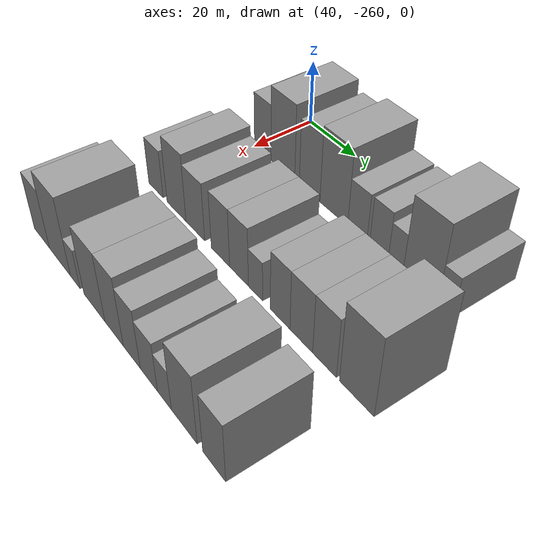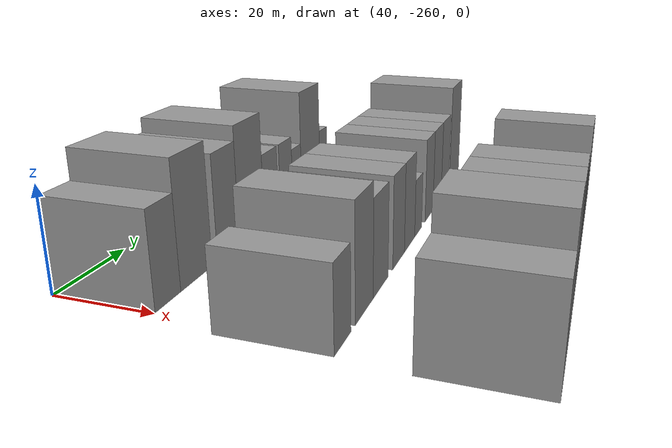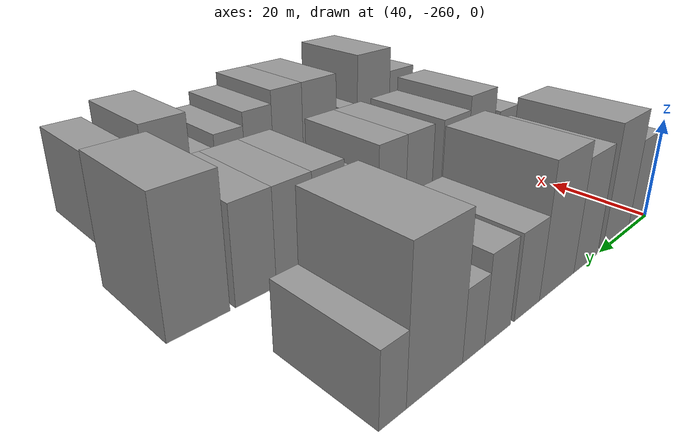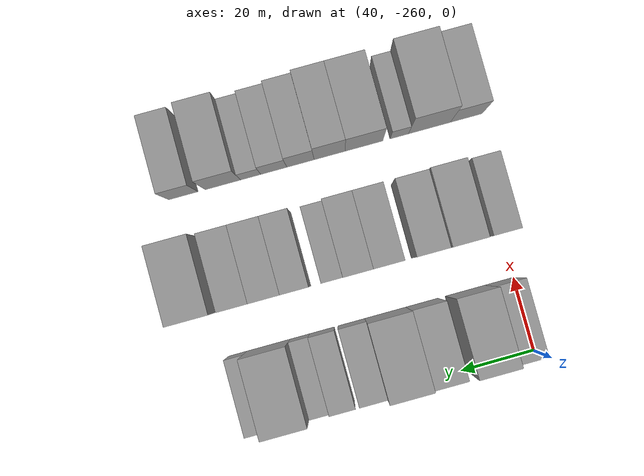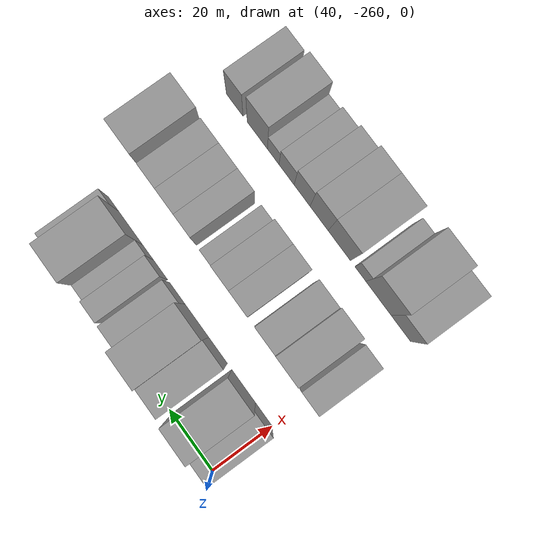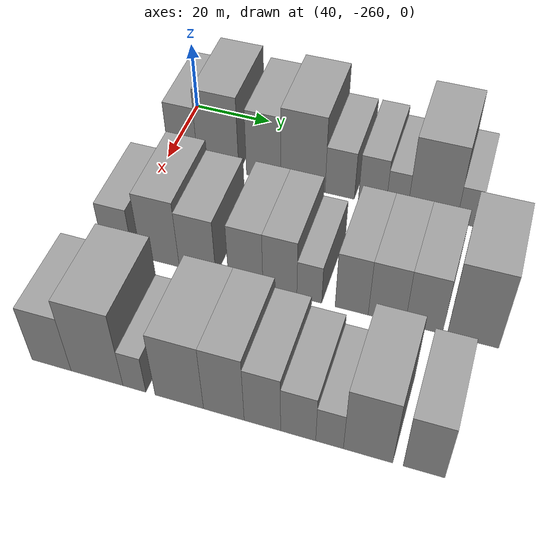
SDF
<sdf version="1.6">
 <world name="default">
  <model name="building_10">
   <static>1</static>
   <pose>50.0000 -255.9643 0 0.000000 0.000000 0.000000</pose>
   <link name="link">
    <pose>0 0 9.00 0 0 0</pose>
    <collision name="collision"><geometry><box><size>20.0000 7.7656 18.0000</size></box></geometry></collision>
    <visual name="visual">
     <cast_shadows>0</cast_shadows>
     <geometry><box><size>20.0000 7.7656 18.0000</size></box></geometry>
     <material>
      <script>
       <uri>model://grey_wall/materials/scripts</uri>
       <uri>model://grey_wall/materials/textures</uri>
       <name>vrc/grey_wall</name>
      </script>
     </material>
    </visual>
   </link>
  </model>
  <model name="building_11">
   <static>1</static>
   <pose>50.0000 -246.6785 0 0.000000 0.000000 0.000000</pose>
   <link name="link">
    <pose>0 0 12.00 0 0 0</pose>
    <collision name="collision"><geometry><box><size>20.0000 10.8059 24.0000</size></box></geometry></collision>
    <visual name="visual">
     <cast_shadows>0</cast_shadows>
     <geometry><box><size>20.0000 10.8059 24.0000</size></box></geometry>
     <material>
      <script>
       <uri>model://grey_wall/materials/scripts</uri>
       <uri>model://grey_wall/materials/textures</uri>
       <name>vrc/grey_wall</name>
      </script>
     </material>
    </visual>
   </link>
  </model>
  <model name="building_12">
   <static>1</static>
   <pose>50.0000 -234.8860 0 0.000000 0.000000 0.000000</pose>
   <link name="link">
    <pose>0 0 10.50 0 0 0</pose>
    <collision name="collision"><geometry><box><size>20.0000 8.7792 21.0000</size></box></geometry></collision>
    <visual name="visual">
     <cast_shadows>0</cast_shadows>
     <geometry><box><size>20.0000 8.7792 21.0000</size></box></geometry>
     <material>
      <script>
       <uri>model://grey_wall/materials/scripts</uri>
       <uri>model://grey_wall/materials/textures</uri>
       <name>vrc/grey_wall</name>
      </script>
     </material>
    </visual>
   </link>
  </model>
  <model name="building_13">
   <static>1</static>
   <pose>50.0000 -224.8944 0 0.000000 0.000000 0.000000</pose>
   <link name="link">
    <pose>0 0 12.00 0 0 0</pose>
    <collision name="collision"><geometry><box><size>20.0000 11.2038 24.0000</size></box></geometry></collision>
    <visual name="visual">
     <cast_shadows>0</cast_shadows>
     <geometry><box><size>20.0000 11.2038 24.0000</size></box></geometry>
     <material>
      <script>
       <uri>model://grey_wall/materials/scripts</uri>
       <uri>model://grey_wall/materials/textures</uri>
       <name>vrc/grey_wall</name>
      </script>
     </material>
    </visual>
   </link>
  </model>
  <model name="building_14">
   <static>1</static>
   <pose>50.0000 -215.6477 0 0.000000 0.000000 0.000000</pose>
   <link name="link">
    <pose>0 0 7.50 0 0 0</pose>
    <collision name="collision"><geometry><box><size>20.0000 7.2896 15.0000</size></box></geometry></collision>
    <visual name="visual">
     <cast_shadows>0</cast_shadows>
     <geometry><box><size>20.0000 7.2896 15.0000</size></box></geometry>
     <material>
      <script>
       <uri>model://grey_wall/materials/scripts</uri>
       <uri>model://grey_wall/materials/textures</uri>
       <name>vrc/grey_wall</name>
      </script>
     </material>
    </visual>
   </link>
  </model>
  <model name="building_15">
   <static>1</static>
   <pose>50.0000 -207.6275 0 0.000000 0.000000 0.000000</pose>
   <link name="link">
    <pose>0 0 7.50 0 0 0</pose>
    <collision name="collision"><geometry><box><size>20.0000 6.7509 15.0000</size></box></geometry></collision>
    <visual name="visual">
     <cast_shadows>0</cast_shadows>
     <geometry><box><size>20.0000 6.7509 15.0000</size></box></geometry>
     <material>
      <script>
       <uri>model://grey_wall/materials/scripts</uri>
       <uri>model://grey_wall/materials/textures</uri>
       <name>vrc/grey_wall</name>
      </script>
     </material>
    </visual>
   </link>
  </model>
  <model name="building_16">
   <static>1</static>
   <pose>50.0000 -201.6469 0 0.000000 0.000000 0.000000</pose>
   <link name="link">
    <pose>0 0 6.00 0 0 0</pose>
    <collision name="collision"><geometry><box><size>20.0000 5.2103 12.0000</size></box></geometry></collision>
    <visual name="visual">
     <cast_shadows>0</cast_shadows>
     <geometry><box><size>20.0000 5.2103 12.0000</size></box></geometry>
     <material>
      <script>
       <uri>model://grey_wall/materials/scripts</uri>
       <uri>model://grey_wall/materials/textures</uri>
       <name>vrc/grey_wall</name>
      </script>
     </material>
    </visual>
   </link>
  </model>
  <model name="building_17">
   <static>1</static>
   <pose>50.0000 -193.1836 0 0.000000 0.000000 0.000000</pose>
   <link name="link">
    <pose>0 0 12.00 0 0 0</pose>
    <collision name="collision"><geometry><box><size>20.0000 11.7162 24.0000</size></box></geometry></collision>
    <visual name="visual">
     <cast_shadows>0</cast_shadows>
     <geometry><box><size>20.0000 11.7162 24.0000</size></box></geometry>
     <material>
      <script>
       <uri>model://grey_wall/materials/scripts</uri>
       <uri>model://grey_wall/materials/textures</uri>
       <name>vrc/grey_wall</name>
      </script>
     </material>
    </visual>
   </link>
  </model>
  <model name="building_18">
   <static>1</static>
   <pose>50.0000 -184.8197 0 0.000000 0.000000 0.000000</pose>
   <link name="link">
    <pose>0 0 6.00 0 0 0</pose>
    <collision name="collision"><geometry><box><size>20.0000 5.0117 12.0000</size></box></geometry></collision>
    <visual name="visual">
     <cast_shadows>0</cast_shadows>
     <geometry><box><size>20.0000 5.0117 12.0000</size></box></geometry>
     <material>
      <script>
       <uri>model://grey_wall/materials/scripts</uri>
       <uri>model://grey_wall/materials/textures</uri>
       <name>vrc/grey_wall</name>
      </script>
     </material>
    </visual>
   </link>
  </model>
  <model name="building_88">
   <static>1</static>
   <pose>82.0000 -259.1674 0 0.000000 0.000000 0.000000</pose>
   <link name="link">
    <pose>0 0 7.50 0 0 0</pose>
    <collision name="collision"><geometry><box><size>20.0000 7.4036 15.0000</size></box></geometry></collision>
    <visual name="visual">
     <cast_shadows>0</cast_shadows>
     <geometry><box><size>20.0000 7.4036 15.0000</size></box></geometry>
     <material>
      <script>
       <uri>model://grey_wall/materials/scripts</uri>
       <uri>model://grey_wall/materials/textures</uri>
       <name>vrc/grey_wall</name>
      </script>
     </material>
    </visual>
   </link>
  </model>
  <model name="building_89">
   <static>1</static>
   <pose>82.0000 -248.8007 0 0.000000 0.000000 0.000000</pose>
   <link name="link">
    <pose>0 0 10.50 0 0 0</pose>
    <collision name="collision"><geometry><box><size>20.0000 9.3297 21.0000</size></box></geometry></collision>
    <visual name="visual">
     <cast_shadows>0</cast_shadows>
     <geometry><box><size>20.0000 9.3297 21.0000</size></box></geometry>
     <material>
      <script>
       <uri>model://grey_wall/materials/scripts</uri>
       <uri>model://grey_wall/materials/textures</uri>
       <name>vrc/grey_wall</name>
      </script>
     </material>
    </visual>
   </link>
  </model>
  <model name="building_90">
   <static>1</static>
   <pose>82.0000 -239.7735 0 0.000000 0.000000 0.000000</pose>
   <link name="link">
    <pose>0 0 9.00 0 0 0</pose>
    <collision name="collision"><geometry><box><size>20.0000 8.7248 18.0000</size></box></geometry></collision>
    <visual name="visual">
     <cast_shadows>0</cast_shadows>
     <geometry><box><size>20.0000 8.7248 18.0000</size></box></geometry>
     <material>
      <script>
       <uri>model://grey_wall/materials/scripts</uri>
       <uri>model://grey_wall/materials/textures</uri>
       <name>vrc/grey_wall</name>
      </script>
     </material>
    </visual>
   </link>
  </model>
  <model name="building_91">
   <static>1</static>
   <pose>82.0000 -228.4020 0 0.000000 0.000000 0.000000</pose>
   <link name="link">
    <pose>0 0 9.00 0 0 0</pose>
    <collision name="collision"><geometry><box><size>20.0000 8.0181 18.0000</size></box></geometry></collision>
    <visual name="visual">
     <cast_shadows>0</cast_shadows>
     <geometry><box><size>20.0000 8.0181 18.0000</size></box></geometry>
     <material>
      <script>
       <uri>model://grey_wall/materials/scripts</uri>
       <uri>model://grey_wall/materials/textures</uri>
       <name>vrc/grey_wall</name>
      </script>
     </material>
    </visual>
   </link>
  </model>
  <model name="building_92">
   <static>1</static>
   <pose>82.0000 -220.4900 0 0.000000 0.000000 0.000000</pose>
   <link name="link">
    <pose>0 0 9.00 0 0 0</pose>
    <collision name="collision"><geometry><box><size>20.0000 7.8060 18.0000</size></box></geometry></collision>
    <visual name="visual">
     <cast_shadows>0</cast_shadows>
     <geometry><box><size>20.0000 7.8060 18.0000</size></box></geometry>
     <material>
      <script>
       <uri>model://grey_wall/materials/scripts</uri>
       <uri>model://grey_wall/materials/textures</uri>
       <name>vrc/grey_wall</name>
      </script>
     </material>
    </visual>
   </link>
  </model>
  <model name="building_93">
   <static>1</static>
   <pose>82.0000 -213.7571 0 0.000000 0.000000 0.000000</pose>
   <link name="link">
    <pose>0 0 6.00 0 0 0</pose>
    <collision name="collision"><geometry><box><size>20.0000 5.6598 12.0000</size></box></geometry></collision>
    <visual name="visual">
     <cast_shadows>0</cast_shadows>
     <geometry><box><size>20.0000 5.6598 12.0000</size></box></geometry>
     <material>
      <script>
       <uri>model://grey_wall/materials/scripts</uri>
       <uri>model://grey_wall/materials/textures</uri>
       <name>vrc/grey_wall</name>
      </script>
     </material>
    </visual>
   </link>
  </model>
  <model name="building_94">
   <static>1</static>
   <pose>82.0000 -204.2520 0 0.000000 0.000000 0.000000</pose>
   <link name="link">
    <pose>0 0 9.00 0 0 0</pose>
    <collision name="collision"><geometry><box><size>20.0000 7.3502 18.0000</size></box></geometry></collision>
    <visual name="visual">
     <cast_shadows>0</cast_shadows>
     <geometry><box><size>20.0000 7.3502 18.0000</size></box></geometry>
     <material>
      <script>
       <uri>model://grey_wall/materials/scripts</uri>
       <uri>model://grey_wall/materials/textures</uri>
       <name>vrc/grey_wall</name>
      </script>
     </material>
    </visual>
   </link>
  </model>
  <model name="building_95">
   <static>1</static>
   <pose>82.0000 -196.5220 0 0.000000 0.000000 0.000000</pose>
   <link name="link">
    <pose>0 0 9.00 0 0 0</pose>
    <collision name="collision"><geometry><box><size>20.0000 8.1099 18.0000</size></box></geometry></collision>
    <visual name="visual">
     <cast_shadows>0</cast_shadows>
     <geometry><box><size>20.0000 8.1099 18.0000</size></box></geometry>
     <material>
      <script>
       <uri>model://grey_wall/materials/scripts</uri>
       <uri>model://grey_wall/materials/textures</uri>
       <name>vrc/grey_wall</name>
      </script>
     </material>
    </visual>
   </link>
  </model>
  <model name="building_96">
   <static>1</static>
   <pose>82.0000 -188.4568 0 0.000000 0.000000 0.000000</pose>
   <link name="link">
    <pose>0 0 9.00 0 0 0</pose>
    <collision name="collision"><geometry><box><size>20.0000 8.0205 18.0000</size></box></geometry></collision>
    <visual name="visual">
     <cast_shadows>0</cast_shadows>
     <geometry><box><size>20.0000 8.0205 18.0000</size></box></geometry>
     <material>
      <script>
       <uri>model://grey_wall/materials/scripts</uri>
       <uri>model://grey_wall/materials/textures</uri>
       <name>vrc/grey_wall</name>
      </script>
     </material>
    </visual>
   </link>
  </model>
  <model name="building_97">
   <static>1</static>
   <pose>82.0000 -177.9880 0 0.000000 0.000000 0.000000</pose>
   <link name="link">
    <pose>0 0 12.00 0 0 0</pose>
    <collision name="collision"><geometry><box><size>20.0000 10.9173 24.0000</size></box></geometry></collision>
    <visual name="visual">
     <cast_shadows>0</cast_shadows>
     <geometry><box><size>20.0000 10.9173 24.0000</size></box></geometry>
     <material>
      <script>
       <uri>model://grey_wall/materials/scripts</uri>
       <uri>model://grey_wall/materials/textures</uri>
       <name>vrc/grey_wall</name>
      </script>
     </material>
    </visual>
   </link>
  </model>
  <model name="building_164">
   <static>1</static>
   <pose>114.0000 -259.5063 0 0.000000 0.000000 0.000000</pose>
   <link name="link">
    <pose>0 0 9.00 0 0 0</pose>
    <collision name="collision"><geometry><box><size>20.0000 8.8665 18.0000</size></box></geometry></collision>
    <visual name="visual">
     <cast_shadows>0</cast_shadows>
     <geometry><box><size>20.0000 8.8665 18.0000</size></box></geometry>
     <material>
      <script>
       <uri>model://grey_wall/materials/scripts</uri>
       <uri>model://grey_wall/materials/textures</uri>
       <name>vrc/grey_wall</name>
      </script>
     </material>
    </visual>
   </link>
  </model>
  <model name="building_165">
   <static>1</static>
   <pose>114.0000 -249.2916 0 0.000000 0.000000 0.000000</pose>
   <link name="link">
    <pose>0 0 12.00 0 0 0</pose>
    <collision name="collision"><geometry><box><size>20.0000 11.5630 24.0000</size></box></geometry></collision>
    <visual name="visual">
     <cast_shadows>0</cast_shadows>
     <geometry><box><size>20.0000 11.5630 24.0000</size></box></geometry>
     <material>
      <script>
       <uri>model://grey_wall/materials/scripts</uri>
       <uri>model://grey_wall/materials/textures</uri>
       <name>vrc/grey_wall</name>
      </script>
     </material>
    </visual>
   </link>
  </model>
  <model name="building_166">
   <static>1</static>
   <pose>114.0000 -241.0012 0 0.000000 0.000000 0.000000</pose>
   <link name="link">
    <pose>0 0 6.00 0 0 0</pose>
    <collision name="collision"><geometry><box><size>20.0000 5.0177 12.0000</size></box></geometry></collision>
    <visual name="visual">
     <cast_shadows>0</cast_shadows>
     <geometry><box><size>20.0000 5.0177 12.0000</size></box></geometry>
     <material>
      <script>
       <uri>model://grey_wall/materials/scripts</uri>
       <uri>model://grey_wall/materials/textures</uri>
       <name>vrc/grey_wall</name>
      </script>
     </material>
    </visual>
   </link>
  </model>
  <model name="building_167">
   <static>1</static>
   <pose>114.0000 -231.3079 0 0.000000 0.000000 0.000000</pose>
   <link name="link">
    <pose>0 0 10.50 0 0 0</pose>
    <collision name="collision"><geometry><box><size>20.0000 10.3689 21.0000</size></box></geometry></collision>
    <visual name="visual">
     <cast_shadows>0</cast_shadows>
     <geometry><box><size>20.0000 10.3689 21.0000</size></box></geometry>
     <material>
      <script>
       <uri>model://grey_wall/materials/scripts</uri>
       <uri>model://grey_wall/materials/textures</uri>
       <name>vrc/grey_wall</name>
      </script>
     </material>
    </visual>
   </link>
  </model>
  <model name="building_168">
   <static>1</static>
   <pose>114.0000 -221.8596 0 0.000000 0.000000 0.000000</pose>
   <link name="link">
    <pose>0 0 10.50 0 0 0</pose>
    <collision name="collision"><geometry><box><size>20.0000 8.5277 21.0000</size></box></geometry></collision>
    <visual name="visual">
     <cast_shadows>0</cast_shadows>
     <geometry><box><size>20.0000 8.5277 21.0000</size></box></geometry>
     <material>
      <script>
       <uri>model://grey_wall/materials/scripts</uri>
       <uri>model://grey_wall/materials/textures</uri>
       <name>vrc/grey_wall</name>
      </script>
     </material>
    </visual>
   </link>
  </model>
  <model name="building_169">
   <static>1</static>
   <pose>114.0000 -213.8521 0 0.000000 0.000000 0.000000</pose>
   <link name="link">
    <pose>0 0 9.00 0 0 0</pose>
    <collision name="collision"><geometry><box><size>20.0000 7.4873 18.0000</size></box></geometry></collision>
    <visual name="visual">
     <cast_shadows>0</cast_shadows>
     <geometry><box><size>20.0000 7.4873 18.0000</size></box></geometry>
     <material>
      <script>
       <uri>model://grey_wall/materials/scripts</uri>
       <uri>model://grey_wall/materials/textures</uri>
       <name>vrc/grey_wall</name>
      </script>
     </material>
    </visual>
   </link>
  </model>
  <model name="building_170">
   <static>1</static>
   <pose>114.0000 -206.5435 0 0.000000 0.000000 0.000000</pose>
   <link name="link">
    <pose>0 0 7.50 0 0 0</pose>
    <collision name="collision"><geometry><box><size>20.0000 7.1299 15.0000</size></box></geometry></collision>
    <visual name="visual">
     <cast_shadows>0</cast_shadows>
     <geometry><box><size>20.0000 7.1299 15.0000</size></box></geometry>
     <material>
      <script>
       <uri>model://grey_wall/materials/scripts</uri>
       <uri>model://grey_wall/materials/textures</uri>
       <name>vrc/grey_wall</name>
      </script>
     </material>
    </visual>
   </link>
  </model>
  <model name="building_171">
   <static>1</static>
   <pose>114.0000 -200.2155 0 0.000000 0.000000 0.000000</pose>
   <link name="link">
    <pose>0 0 6.00 0 0 0</pose>
    <collision name="collision"><geometry><box><size>20.0000 5.5261 12.0000</size></box></geometry></collision>
    <visual name="visual">
     <cast_shadows>0</cast_shadows>
     <geometry><box><size>20.0000 5.5261 12.0000</size></box></geometry>
     <material>
      <script>
       <uri>model://grey_wall/materials/scripts</uri>
       <uri>model://grey_wall/materials/textures</uri>
       <name>vrc/grey_wall</name>
      </script>
     </material>
    </visual>
   </link>
  </model>
  <model name="building_172">
   <static>1</static>
   <pose>114.0000 -192.5930 0 0.000000 0.000000 0.000000</pose>
   <link name="link">
    <pose>0 0 10.50 0 0 0</pose>
    <collision name="collision"><geometry><box><size>20.0000 9.7190 21.0000</size></box></geometry></collision>
    <visual name="visual">
     <cast_shadows>0</cast_shadows>
     <geometry><box><size>20.0000 9.7190 21.0000</size></box></geometry>
     <material>
      <script>
       <uri>model://grey_wall/materials/scripts</uri>
       <uri>model://grey_wall/materials/textures</uri>
       <name>vrc/grey_wall</name>
      </script>
     </material>
    </visual>
   </link>
  </model>
  <model name="building_173">
   <static>1</static>
   <pose>114.0000 -181.7309 0 0.000000 0.000000 0.000000</pose>
   <link name="link">
    <pose>0 0 9.00 0 0 0</pose>
    <collision name="collision"><geometry><box><size>20.0000 8.0053 18.0000</size></box></geometry></collision>
    <visual name="visual">
     <cast_shadows>0</cast_shadows>
     <geometry><box><size>20.0000 8.0053 18.0000</size></box></geometry>
     <material>
      <script>
       <uri>model://grey_wall/materials/scripts</uri>
       <uri>model://grey_wall/materials/textures</uri>
       <name>vrc/grey_wall</name>
      </script>
     </material>
    </visual>
   </link>
  </model>
 </world>
</sdf>
